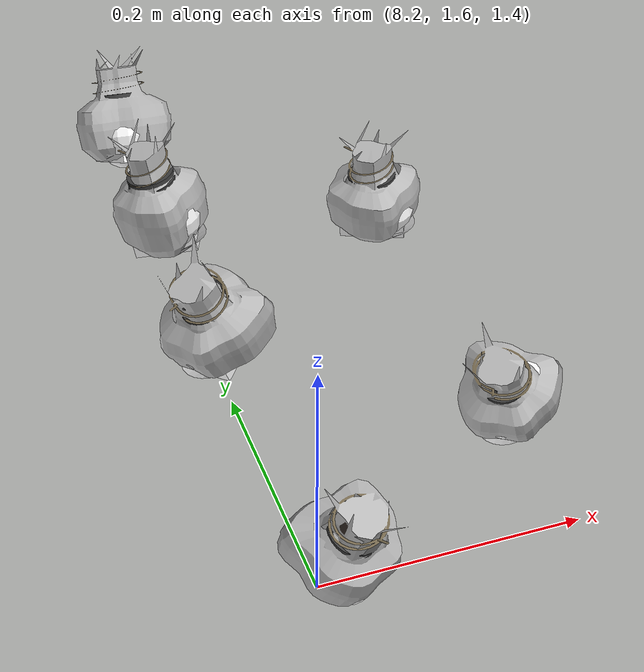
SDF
<sdf version="1.11">
 <world name="peach_orchard">
  <model name="ground">
   <static>true</static>
   <link name="link">
    <visual name="soil">
     <geometry><plane><normal>0 0 1</normal><size>32 22</size></plane></geometry>
     <material>
      <ambient>1 1 1 1</ambient>
      <diffuse>1 1 1 1</diffuse>
      <specular>0.1 0.1 0.1 1</specular>
      <pbr>
       <metal>
        <albedo_map>textures/soil_albedo.png</albedo_map>
        <normal_map type="tangent">textures/soil_normal.png</normal_map>
        <roughness>0.95</roughness>
        <metalness>0</metalness>
       </metal>
      </pbr>
     </material>
    </visual>
    <collision name="c_soil">
     <geometry><plane><normal>0 0 1</normal><size>32 22</size></plane></geometry>
    </collision>
   </link>
  </model>
  <model name="peach_tree_r4_t4_00">
   <pose>8.22 2.05094 1.36118 0 0.211422 2.40096</pose>
   <static>true</static>
   <link name="bag">
    <visual name="bag_mesh">
     <pose>0 0 0.0486951 0 0 0</pose>
     <geometry>
      <mesh><uri>model://peach_sim/meshes/bagged_peach.glb</uri><scale>0.952342 1.12206 1.10671</scale></mesh>
     </geometry>
    </visual>
    <visual name="body">
     <pose>0 0 0.0306951 0 0 0</pose>
     <geometry><ellipsoid><radii>0.0357128 0.0291735 0.0331507</radii></ellipsoid></geometry>
     <material>
      <ambient>1 1 1 1</ambient>
      <diffuse>1 1 1 1</diffuse>
      <specular>0.1 0.1 0.1 1</specular>
      <pbr>
       <metal>
        <albedo_map>textures/paper_bag_albedo.png</albedo_map>
        <normal_map type="tangent">textures/paper_bag_normal.png</normal_map>
        <roughness>0.72</roughness>
        <metalness>0</metalness>
       </metal>
      </pbr>
     </material>
    </visual>
    <visual name="bottom_fold">
     <pose>0 0 0.012 0 0 0.35</pose>
     <geometry><box><size>0.0553549 0.0335495 0.022</size></box></geometry>
     <material>
      <ambient>1 1 1 1</ambient>
      <diffuse>1 1 1 1</diffuse>
      <specular>0.1 0.1 0.1 1</specular>
      <pbr>
       <metal>
        <albedo_map>textures/paper_bag_albedo.png</albedo_map>
        <normal_map type="tangent">textures/paper_bag_normal.png</normal_map>
        <roughness>0.8</roughness>
        <metalness>0</metalness>
       </metal>
      </pbr>
     </material>
    </visual>
    <visual name="fruit">
     <pose>0 0 0.0193569 0 0 0</pose>
     <geometry><sphere><radius>0.0263712</radius></sphere></geometry>
     <material>
      <ambient>1 1 1 1</ambient>
      <diffuse>1 1 1 1</diffuse>
      <specular>0.1 0.1 0.1 1</specular>
      <pbr>
       <metal>
        <albedo_map>textures/fruit_skin_albedo.png</albedo_map>
        <normal_map type="tangent">textures/fruit_skin_normal.png</normal_map>
        <roughness>0.55</roughness>
        <metalness>0</metalness>
       </metal>
      </pbr>
     </material>
    </visual>
    <visual name="neck">
     <pose>0 0 0.0703902 0 0 0</pose>
     <geometry><cylinder><radius>0.013</radius><length>0.018</length></cylinder></geometry>
     <material>
      <ambient>1 1 1 1</ambient>
      <diffuse>1 1 1 1</diffuse>
      <specular>0.1 0.1 0.1 1</specular>
      <pbr>
       <metal>
        <albedo_map>textures/paper_bag_albedo.png</albedo_map>
        <normal_map type="tangent">textures/paper_bag_normal.png</normal_map>
        <roughness>0.75</roughness>
        <metalness>0</metalness>
       </metal>
      </pbr>
     </material>
    </visual>
    <visual name="gather">
     <pose>0 0 0.0513902 0 0 0</pose>
     <geometry><cylinder><radius>0.019</radius><length>0.02</length></cylinder></geometry>
     <material>
      <ambient>1 1 1 1</ambient>
      <diffuse>1 1 1 1</diffuse>
      <specular>0.1 0.1 0.1 1</specular>
      <pbr>
       <metal>
        <albedo_map>textures/paper_bag_albedo.png</albedo_map>
        <normal_map type="tangent">textures/paper_bag_normal.png</normal_map>
        <roughness>0.8</roughness>
        <metalness>0</metalness>
       </metal>
      </pbr>
     </material>
    </visual>
    <visual name="inner_paper">
     <pose>0 0 0.0753902 0 0 0</pose>
     <geometry><cylinder><radius>0.01</radius><length>0.008</length></cylinder></geometry>
     <material>
      <ambient>0.180392 0.14902 0.133333 1</ambient>
      <diffuse>0.180392 0.14902 0.133333 1</diffuse>
      <specular>0.1 0.1 0.1 1</specular>
     </material>
    </visual>
    <visual name="wire_0">
     <pose>0 0 0.0653902 0 0 0</pose>
     <geometry><cylinder><radius>0.0205</radius><length>0.0035</length></cylinder></geometry>
     <material>
      <ambient>0.25 0.25 0.25 1</ambient>
      <diffuse>0.25 0.25 0.25 1</diffuse>
      <specular>0.1 0.1 0.1 1</specular>
     </material>
    </visual>
    <visual name="wire_1">
     <pose>0 0 0.0723902 0 0 0</pose>
     <geometry><cylinder><radius>0.0205</radius><length>0.0035</length></cylinder></geometry>
     <material>
      <ambient>0.25 0.25 0.25 1</ambient>
      <diffuse>0.25 0.25 0.25 1</diffuse>
      <specular>0.1 0.1 0.1 1</specular>
     </material>
    </visual>
    <visual name="wire_tail">
     <pose>0.01 0 0.0733902 0 0.521618 0</pose>
     <geometry><cylinder><radius>0.0012</radius><length>0.026</length></cylinder></geometry>
     <material>
      <ambient>0.25 0.25 0.25 1</ambient>
      <diffuse>0.25 0.25 0.25 1</diffuse>
      <specular>0.1 0.1 0.1 1</specular>
     </material>
    </visual>
    <collision name="c_body">
     <pose>0 0 0.0306951 0 0 0</pose>
     <geometry><cylinder><radius>0.0357128</radius><length>0.0613902</length></cylinder></geometry>
    </collision>
   </link>
  </model>
  <model name="peach_tree_r4_t4_01">
   <pose>8.22 1.87372 1.3921 0 0.388755 -2.74088</pose>
   <static>true</static>
   <link name="bag">
    <visual name="bag_mesh">
     <pose>0 0 0.0432155 0 0 -0</pose>
     <geometry>
      <mesh><uri>model://peach_sim/meshes/bagged_peach.glb</uri><scale>1.0823 1.18967 0.98217</scale></mesh>
     </geometry>
    </visual>
    <visual name="body">
     <pose>0 0 0.0252155 0 0 0</pose>
     <geometry><ellipsoid><radii>0.0405861 0.0309315 0.0272327</radii></ellipsoid></geometry>
     <material>
      <ambient>1 1 1 1</ambient>
      <diffuse>1 1 1 1</diffuse>
      <specular>0.1 0.1 0.1 1</specular>
      <pbr>
       <metal>
        <albedo_map>textures/paper_bag_albedo.png</albedo_map>
        <normal_map type="tangent">textures/paper_bag_normal.png</normal_map>
        <roughness>0.72</roughness>
        <metalness>0</metalness>
       </metal>
      </pbr>
     </material>
    </visual>
    <visual name="bottom_fold">
     <pose>0 0 0.012 0 0 0.35</pose>
     <geometry><box><size>0.0629085 0.0355712 0.022</size></box></geometry>
     <material>
      <ambient>1 1 1 1</ambient>
      <diffuse>1 1 1 1</diffuse>
      <specular>0.1 0.1 0.1 1</specular>
      <pbr>
       <metal>
        <albedo_map>textures/paper_bag_albedo.png</albedo_map>
        <normal_map type="tangent">textures/paper_bag_normal.png</normal_map>
        <roughness>0.8</roughness>
        <metalness>0</metalness>
       </metal>
      </pbr>
     </material>
    </visual>
    <visual name="fruit">
     <pose>0 0 0.0196808 0 0 0</pose>
     <geometry><sphere><radius>0.0267081</radius></sphere></geometry>
     <material>
      <ambient>1 1 1 1</ambient>
      <diffuse>1 1 1 1</diffuse>
      <specular>0.1 0.1 0.1 1</specular>
      <pbr>
       <metal>
        <albedo_map>textures/fruit_skin_albedo.png</albedo_map>
        <normal_map type="tangent">textures/fruit_skin_normal.png</normal_map>
        <roughness>0.55</roughness>
        <metalness>0</metalness>
       </metal>
      </pbr>
     </material>
    </visual>
    <visual name="neck">
     <pose>0 0 0.0594309 0 0 0</pose>
     <geometry><cylinder><radius>0.013</radius><length>0.018</length></cylinder></geometry>
     <material>
      <ambient>1 1 1 1</ambient>
      <diffuse>1 1 1 1</diffuse>
      <specular>0.1 0.1 0.1 1</specular>
      <pbr>
       <metal>
        <albedo_map>textures/paper_bag_albedo.png</albedo_map>
        <normal_map type="tangent">textures/paper_bag_normal.png</normal_map>
        <roughness>0.75</roughness>
        <metalness>0</metalness>
       </metal>
      </pbr>
     </material>
    </visual>
    <visual name="gather">
     <pose>0 0 0.0404309 0 0 0</pose>
     <geometry><cylinder><radius>0.019</radius><length>0.02</length></cylinder></geometry>
     <material>
      <ambient>1 1 1 1</ambient>
      <diffuse>1 1 1 1</diffuse>
      <specular>0.1 0.1 0.1 1</specular>
      <pbr>
       <metal>
        <albedo_map>textures/paper_bag_albedo.png</albedo_map>
        <normal_map type="tangent">textures/paper_bag_normal.png</normal_map>
        <roughness>0.8</roughness>
        <metalness>0</metalness>
       </metal>
      </pbr>
     </material>
    </visual>
    <visual name="inner_paper">
     <pose>0 0 0.0644309 0 0 0</pose>
     <geometry><cylinder><radius>0.01</radius><length>0.008</length></cylinder></geometry>
     <material>
      <ambient>0.180392 0.14902 0.133333 1</ambient>
      <diffuse>0.180392 0.14902 0.133333 1</diffuse>
      <specular>0.1 0.1 0.1 1</specular>
     </material>
    </visual>
    <visual name="wire_0">
     <pose>0 0 0.0544309 0 0 0</pose>
     <geometry><cylinder><radius>0.0205</radius><length>0.0035</length></cylinder></geometry>
     <material>
      <ambient>0.25 0.25 0.25 1</ambient>
      <diffuse>0.25 0.25 0.25 1</diffuse>
      <specular>0.1 0.1 0.1 1</specular>
     </material>
    </visual>
    <visual name="wire_1">
     <pose>0 0 0.0614309 0 0 0</pose>
     <geometry><cylinder><radius>0.0205</radius><length>0.0035</length></cylinder></geometry>
     <material>
      <ambient>0.25 0.25 0.25 1</ambient>
      <diffuse>0.25 0.25 0.25 1</diffuse>
      <specular>0.1 0.1 0.1 1</specular>
     </material>
    </visual>
    <visual name="wire_tail">
     <pose>0.01 0 0.0624309 0 0.521618 0</pose>
     <geometry><cylinder><radius>0.0012</radius><length>0.026</length></cylinder></geometry>
     <material>
      <ambient>0.25 0.25 0.25 1</ambient>
      <diffuse>0.25 0.25 0.25 1</diffuse>
      <specular>0.1 0.1 0.1 1</specular>
     </material>
    </visual>
    <collision name="c_body">
     <pose>0 0 0.0252155 0 0 0</pose>
     <geometry><cylinder><radius>0.0405861</radius><length>0.0504309</length></cylinder></geometry>
    </collision>
   </link>
  </model>
  <model name="peach_tree_r4_t4_02">
   <pose>8.22 1.62894 1.39004 0 0.455169 -1.26346</pose>
   <static>true</static>
   <link name="bag">
    <visual name="bag_mesh">
     <pose>0 0 0.0443576 0 0 -0</pose>
     <geometry>
      <mesh><uri>model://peach_sim/meshes/bagged_peach.glb</uri><scale>0.974383 1.15786 1.00813</scale></mesh>
     </geometry>
    </visual>
    <visual name="body">
     <pose>0 0 0.0263576 0 0 0</pose>
     <geometry><ellipsoid><radii>0.0365393 0.0301043 0.0284662</radii></ellipsoid></geometry>
     <material>
      <ambient>1 1 1 1</ambient>
      <diffuse>1 1 1 1</diffuse>
      <specular>0.1 0.1 0.1 1</specular>
      <pbr>
       <metal>
        <albedo_map>textures/paper_bag_albedo.png</albedo_map>
        <normal_map type="tangent">textures/paper_bag_normal.png</normal_map>
        <roughness>0.72</roughness>
        <metalness>0</metalness>
       </metal>
      </pbr>
     </material>
    </visual>
    <visual name="bottom_fold">
     <pose>0 0 0.012 0 0 0.35</pose>
     <geometry><box><size>0.056636 0.03462 0.022</size></box></geometry>
     <material>
      <ambient>1 1 1 1</ambient>
      <diffuse>1 1 1 1</diffuse>
      <specular>0.1 0.1 0.1 1</specular>
      <pbr>
       <metal>
        <albedo_map>textures/paper_bag_albedo.png</albedo_map>
        <normal_map type="tangent">textures/paper_bag_normal.png</normal_map>
        <roughness>0.8</roughness>
        <metalness>0</metalness>
       </metal>
      </pbr>
     </material>
    </visual>
    <visual name="fruit">
     <pose>0 0 0.0179867 0 0 0</pose>
     <geometry><sphere><radius>0.0249461</radius></sphere></geometry>
     <material>
      <ambient>1 1 1 1</ambient>
      <diffuse>1 1 1 1</diffuse>
      <specular>0.1 0.1 0.1 1</specular>
      <pbr>
       <metal>
        <albedo_map>textures/fruit_skin_albedo.png</albedo_map>
        <normal_map type="tangent">textures/fruit_skin_normal.png</normal_map>
        <roughness>0.55</roughness>
        <metalness>0</metalness>
       </metal>
      </pbr>
     </material>
    </visual>
    <visual name="neck">
     <pose>0 0 0.0617152 0 0 0</pose>
     <geometry><cylinder><radius>0.013</radius><length>0.018</length></cylinder></geometry>
     <material>
      <ambient>1 1 1 1</ambient>
      <diffuse>1 1 1 1</diffuse>
      <specular>0.1 0.1 0.1 1</specular>
      <pbr>
       <metal>
        <albedo_map>textures/paper_bag_albedo.png</albedo_map>
        <normal_map type="tangent">textures/paper_bag_normal.png</normal_map>
        <roughness>0.75</roughness>
        <metalness>0</metalness>
       </metal>
      </pbr>
     </material>
    </visual>
    <visual name="gather">
     <pose>0 0 0.0427152 0 0 0</pose>
     <geometry><cylinder><radius>0.019</radius><length>0.02</length></cylinder></geometry>
     <material>
      <ambient>1 1 1 1</ambient>
      <diffuse>1 1 1 1</diffuse>
      <specular>0.1 0.1 0.1 1</specular>
      <pbr>
       <metal>
        <albedo_map>textures/paper_bag_albedo.png</albedo_map>
        <normal_map type="tangent">textures/paper_bag_normal.png</normal_map>
        <roughness>0.8</roughness>
        <metalness>0</metalness>
       </metal>
      </pbr>
     </material>
    </visual>
    <visual name="inner_paper">
     <pose>0 0 0.0667152 0 0 0</pose>
     <geometry><cylinder><radius>0.01</radius><length>0.008</length></cylinder></geometry>
     <material>
      <ambient>0.180392 0.14902 0.133333 1</ambient>
      <diffuse>0.180392 0.14902 0.133333 1</diffuse>
      <specular>0.1 0.1 0.1 1</specular>
     </material>
    </visual>
    <visual name="wire_0">
     <pose>0 0 0.0567152 0 0 0</pose>
     <geometry><cylinder><radius>0.0205</radius><length>0.0035</length></cylinder></geometry>
     <material>
      <ambient>0.25 0.25 0.25 1</ambient>
      <diffuse>0.25 0.25 0.25 1</diffuse>
      <specular>0.1 0.1 0.1 1</specular>
     </material>
    </visual>
    <visual name="wire_1">
     <pose>0 0 0.0637152 0 0 0</pose>
     <geometry><cylinder><radius>0.0205</radius><length>0.0035</length></cylinder></geometry>
     <material>
      <ambient>0.25 0.25 0.25 1</ambient>
      <diffuse>0.25 0.25 0.25 1</diffuse>
      <specular>0.1 0.1 0.1 1</specular>
     </material>
    </visual>
    <visual name="wire_tail">
     <pose>0.01 0 0.0647152 0 0.521618 0</pose>
     <geometry><cylinder><radius>0.0012</radius><length>0.026</length></cylinder></geometry>
     <material>
      <ambient>0.25 0.25 0.25 1</ambient>
      <diffuse>0.25 0.25 0.25 1</diffuse>
      <specular>0.1 0.1 0.1 1</specular>
     </material>
    </visual>
    <collision name="c_body">
     <pose>0 0 0.0263576 0 0 0</pose>
     <geometry><cylinder><radius>0.0365393</radius><length>0.0527152</length></cylinder></geometry>
    </collision>
   </link>
  </model>
  <model name="peach_tree_r4_t4_03">
   <pose>8.39352 2.00454 1.37162 0 0.0652461 2.32643</pose>
   <static>true</static>
   <link name="bag">
    <visual name="bag_mesh">
     <pose>0 0 0.0395387 0 0 0</pose>
     <geometry>
      <mesh><uri>model://peach_sim/meshes/bagged_peach.glb</uri><scale>0.957902 1.14624 0.898607</scale></mesh>
     </geometry>
    </visual>
    <visual name="body">
     <pose>0 0 0.0215387 0 0 0</pose>
     <geometry><ellipsoid><radii>0.0359213 0.0298022 0.0232618</radii></ellipsoid></geometry>
     <material>
      <ambient>1 1 1 1</ambient>
      <diffuse>1 1 1 1</diffuse>
      <specular>0.1 0.1 0.1 1</specular>
      <pbr>
       <metal>
        <albedo_map>textures/paper_bag_albedo.png</albedo_map>
        <normal_map type="tangent">textures/paper_bag_normal.png</normal_map>
        <roughness>0.72</roughness>
        <metalness>0</metalness>
       </metal>
      </pbr>
     </material>
    </visual>
    <visual name="bottom_fold">
     <pose>0 0 0.012 0 0 0.35</pose>
     <geometry><box><size>0.0556781 0.0342725 0.022</size></box></geometry>
     <material>
      <ambient>1 1 1 1</ambient>
      <diffuse>1 1 1 1</diffuse>
      <specular>0.1 0.1 0.1 1</specular>
      <pbr>
       <metal>
        <albedo_map>textures/paper_bag_albedo.png</albedo_map>
        <normal_map type="tangent">textures/paper_bag_normal.png</normal_map>
        <roughness>0.8</roughness>
        <metalness>0</metalness>
       </metal>
      </pbr>
     </material>
    </visual>
    <visual name="fruit">
     <pose>0 0 0.0179169 0 0 0</pose>
     <geometry><sphere><radius>0.0248736</radius></sphere></geometry>
     <material>
      <ambient>1 1 1 1</ambient>
      <diffuse>1 1 1 1</diffuse>
      <specular>0.1 0.1 0.1 1</specular>
      <pbr>
       <metal>
        <albedo_map>textures/fruit_skin_albedo.png</albedo_map>
        <normal_map type="tangent">textures/fruit_skin_normal.png</normal_map>
        <roughness>0.55</roughness>
        <metalness>0</metalness>
       </metal>
      </pbr>
     </material>
    </visual>
    <visual name="neck">
     <pose>0 0 0.0520774 0 0 0</pose>
     <geometry><cylinder><radius>0.013</radius><length>0.018</length></cylinder></geometry>
     <material>
      <ambient>1 1 1 1</ambient>
      <diffuse>1 1 1 1</diffuse>
      <specular>0.1 0.1 0.1 1</specular>
      <pbr>
       <metal>
        <albedo_map>textures/paper_bag_albedo.png</albedo_map>
        <normal_map type="tangent">textures/paper_bag_normal.png</normal_map>
        <roughness>0.75</roughness>
        <metalness>0</metalness>
       </metal>
      </pbr>
     </material>
    </visual>
    <visual name="gather">
     <pose>0 0 0.0330774 0 0 0</pose>
     <geometry><cylinder><radius>0.019</radius><length>0.02</length></cylinder></geometry>
     <material>
      <ambient>1 1 1 1</ambient>
      <diffuse>1 1 1 1</diffuse>
      <specular>0.1 0.1 0.1 1</specular>
      <pbr>
       <metal>
        <albedo_map>textures/paper_bag_albedo.png</albedo_map>
        <normal_map type="tangent">textures/paper_bag_normal.png</normal_map>
        <roughness>0.8</roughness>
        <metalness>0</metalness>
       </metal>
      </pbr>
     </material>
    </visual>
    <visual name="inner_paper">
     <pose>0 0 0.0570774 0 0 0</pose>
     <geometry><cylinder><radius>0.01</radius><length>0.008</length></cylinder></geometry>
     <material>
      <ambient>0.180392 0.14902 0.133333 1</ambient>
      <diffuse>0.180392 0.14902 0.133333 1</diffuse>
      <specular>0.1 0.1 0.1 1</specular>
     </material>
    </visual>
    <visual name="wire_0">
     <pose>0 0 0.0470774 0 0 0</pose>
     <geometry><cylinder><radius>0.0205</radius><length>0.0035</length></cylinder></geometry>
     <material>
      <ambient>0.25 0.25 0.25 1</ambient>
      <diffuse>0.25 0.25 0.25 1</diffuse>
      <specular>0.1 0.1 0.1 1</specular>
     </material>
    </visual>
    <visual name="wire_1">
     <pose>0 0 0.0540774 0 0 0</pose>
     <geometry><cylinder><radius>0.0205</radius><length>0.0035</length></cylinder></geometry>
     <material>
      <ambient>0.25 0.25 0.25 1</ambient>
      <diffuse>0.25 0.25 0.25 1</diffuse>
      <specular>0.1 0.1 0.1 1</specular>
     </material>
    </visual>
    <visual name="wire_tail">
     <pose>0.01 0 0.0550774 0 0.521618 0</pose>
     <geometry><cylinder><radius>0.0012</radius><length>0.026</length></cylinder></geometry>
     <material>
      <ambient>0.25 0.25 0.25 1</ambient>
      <diffuse>0.25 0.25 0.25 1</diffuse>
      <specular>0.1 0.1 0.1 1</specular>
     </material>
    </visual>
    <collision name="c_body">
     <pose>0 0 0.0215387 0 0 0</pose>
     <geometry><cylinder><radius>0.0359213</radius><length>0.0430774</length></cylinder></geometry>
    </collision>
   </link>
  </model>
  <model name="peach_tree_r4_t4_04">
   <pose>8.42672 1.77528 1.34861 0 0.468115 -2.3373</pose>
   <static>true</static>
   <link name="bag">
    <visual name="bag_mesh">
     <pose>0 0 0.0404287 0 0 -0</pose>
     <geometry>
      <mesh><uri>model://peach_sim/meshes/bagged_peach.glb</uri><scale>0.979638 1.18502 0.918835</scale></mesh>
     </geometry>
    </visual>
    <visual name="body">
     <pose>0 0 0.0224287 0 0 0</pose>
     <geometry><ellipsoid><radii>0.0367364 0.0308104 0.024223</radii></ellipsoid></geometry>
     <material>
      <ambient>1 1 1 1</ambient>
      <diffuse>1 1 1 1</diffuse>
      <specular>0.1 0.1 0.1 1</specular>
      <pbr>
       <metal>
        <albedo_map>textures/paper_bag_albedo.png</albedo_map>
        <normal_map type="tangent">textures/paper_bag_normal.png</normal_map>
        <roughness>0.72</roughness>
        <metalness>0</metalness>
       </metal>
      </pbr>
     </material>
    </visual>
    <visual name="bottom_fold">
     <pose>0 0 0.012 0 0 0.35</pose>
     <geometry><box><size>0.0569415 0.035432 0.022</size></box></geometry>
     <material>
      <ambient>1 1 1 1</ambient>
      <diffuse>1 1 1 1</diffuse>
      <specular>0.1 0.1 0.1 1</specular>
      <pbr>
       <metal>
        <albedo_map>textures/paper_bag_albedo.png</albedo_map>
        <normal_map type="tangent">textures/paper_bag_normal.png</normal_map>
        <roughness>0.8</roughness>
        <metalness>0</metalness>
       </metal>
      </pbr>
     </material>
    </visual>
    <visual name="fruit">
     <pose>0 0 0.0185045 0 0 0</pose>
     <geometry><sphere><radius>0.0254846</radius></sphere></geometry>
     <material>
      <ambient>1 1 1 1</ambient>
      <diffuse>1 1 1 1</diffuse>
      <specular>0.1 0.1 0.1 1</specular>
      <pbr>
       <metal>
        <albedo_map>textures/fruit_skin_albedo.png</albedo_map>
        <normal_map type="tangent">textures/fruit_skin_normal.png</normal_map>
        <roughness>0.55</roughness>
        <metalness>0</metalness>
       </metal>
      </pbr>
     </material>
    </visual>
    <visual name="neck">
     <pose>0 0 0.0538575 0 0 0</pose>
     <geometry><cylinder><radius>0.013</radius><length>0.018</length></cylinder></geometry>
     <material>
      <ambient>1 1 1 1</ambient>
      <diffuse>1 1 1 1</diffuse>
      <specular>0.1 0.1 0.1 1</specular>
      <pbr>
       <metal>
        <albedo_map>textures/paper_bag_albedo.png</albedo_map>
        <normal_map type="tangent">textures/paper_bag_normal.png</normal_map>
        <roughness>0.75</roughness>
        <metalness>0</metalness>
       </metal>
      </pbr>
     </material>
    </visual>
    <visual name="gather">
     <pose>0 0 0.0348575 0 0 0</pose>
     <geometry><cylinder><radius>0.019</radius><length>0.02</length></cylinder></geometry>
     <material>
      <ambient>1 1 1 1</ambient>
      <diffuse>1 1 1 1</diffuse>
      <specular>0.1 0.1 0.1 1</specular>
      <pbr>
       <metal>
        <albedo_map>textures/paper_bag_albedo.png</albedo_map>
        <normal_map type="tangent">textures/paper_bag_normal.png</normal_map>
        <roughness>0.8</roughness>
        <metalness>0</metalness>
       </metal>
      </pbr>
     </material>
    </visual>
    <visual name="inner_paper">
     <pose>0 0 0.0588575 0 0 0</pose>
     <geometry><cylinder><radius>0.01</radius><length>0.008</length></cylinder></geometry>
     <material>
      <ambient>0.180392 0.14902 0.133333 1</ambient>
      <diffuse>0.180392 0.14902 0.133333 1</diffuse>
      <specular>0.1 0.1 0.1 1</specular>
     </material>
    </visual>
    <visual name="wire_0">
     <pose>0 0 0.0488575 0 0 0</pose>
     <geometry><cylinder><radius>0.0205</radius><length>0.0035</length></cylinder></geometry>
     <material>
      <ambient>0.25 0.25 0.25 1</ambient>
      <diffuse>0.25 0.25 0.25 1</diffuse>
      <specular>0.1 0.1 0.1 1</specular>
     </material>
    </visual>
    <visual name="wire_1">
     <pose>0 0 0.0558575 0 0 0</pose>
     <geometry><cylinder><radius>0.0205</radius><length>0.0035</length></cylinder></geometry>
     <material>
      <ambient>0.25 0.25 0.25 1</ambient>
      <diffuse>0.25 0.25 0.25 1</diffuse>
      <specular>0.1 0.1 0.1 1</specular>
     </material>
    </visual>
    <visual name="wire_tail">
     <pose>0.01 0 0.0568575 0 0.521618 0</pose>
     <geometry><cylinder><radius>0.0012</radius><length>0.026</length></cylinder></geometry>
     <material>
      <ambient>0.25 0.25 0.25 1</ambient>
      <diffuse>0.25 0.25 0.25 1</diffuse>
      <specular>0.1 0.1 0.1 1</specular>
     </material>
    </visual>
    <collision name="c_body">
     <pose>0 0 0.0224287 0 0 0</pose>
     <geometry><cylinder><radius>0.0367364</radius><length>0.0448575</length></cylinder></geometry>
    </collision>
   </link>
  </model>
  <model name="peach_tree_r4_t4_06">
   <pose>8.22 2.19382 1.35332 0 0.544929 1.46484</pose>
   <static>true</static>
   <link name="bag">
    <visual name="bag_mesh">
     <pose>0 0 0.0430998 0 0 0</pose>
     <geometry>
      <mesh><uri>model://peach_sim/meshes/bagged_peach.glb</uri><scale>1.03896 1.23952 0.97954</scale></mesh>
     </geometry>
    </visual>
    <visual name="body">
     <pose>0 0 0.0250998 0 0 0</pose>
     <geometry><ellipsoid><radii>0.0389612 0.0322274 0.0271078</radii></ellipsoid></geometry>
     <material>
      <ambient>1 1 1 1</ambient>
      <diffuse>1 1 1 1</diffuse>
      <specular>0.1 0.1 0.1 1</specular>
      <pbr>
       <metal>
        <albedo_map>textures/paper_bag_albedo.png</albedo_map>
        <normal_map type="tangent">textures/paper_bag_normal.png</normal_map>
        <roughness>0.72</roughness>
        <metalness>0</metalness>
       </metal>
      </pbr>
     </material>
    </visual>
    <visual name="bottom_fold">
     <pose>0 0 0.012 0 0 0.35</pose>
     <geometry><box><size>0.0603898 0.0370615 0.022</size></box></geometry>
     <material>
      <ambient>1 1 1 1</ambient>
      <diffuse>1 1 1 1</diffuse>
      <specular>0.1 0.1 0.1 1</specular>
      <pbr>
       <metal>
        <albedo_map>textures/paper_bag_albedo.png</albedo_map>
        <normal_map type="tangent">textures/paper_bag_normal.png</normal_map>
        <roughness>0.8</roughness>
        <metalness>0</metalness>
       </metal>
      </pbr>
     </material>
    </visual>
    <visual name="fruit">
     <pose>0 0 0.0186168 0 0 0</pose>
     <geometry><sphere><radius>0.0256014</radius></sphere></geometry>
     <material>
      <ambient>1 1 1 1</ambient>
      <diffuse>1 1 1 1</diffuse>
      <specular>0.1 0.1 0.1 1</specular>
      <pbr>
       <metal>
        <albedo_map>textures/fruit_skin_albedo.png</albedo_map>
        <normal_map type="tangent">textures/fruit_skin_normal.png</normal_map>
        <roughness>0.55</roughness>
        <metalness>0</metalness>
       </metal>
      </pbr>
     </material>
    </visual>
    <visual name="neck">
     <pose>0 0 0.0591995 0 0 0</pose>
     <geometry><cylinder><radius>0.013</radius><length>0.018</length></cylinder></geometry>
     <material>
      <ambient>1 1 1 1</ambient>
      <diffuse>1 1 1 1</diffuse>
      <specular>0.1 0.1 0.1 1</specular>
      <pbr>
       <metal>
        <albedo_map>textures/paper_bag_albedo.png</albedo_map>
        <normal_map type="tangent">textures/paper_bag_normal.png</normal_map>
        <roughness>0.75</roughness>
        <metalness>0</metalness>
       </metal>
      </pbr>
     </material>
    </visual>
    <visual name="gather">
     <pose>0 0 0.0401995 0 0 0</pose>
     <geometry><cylinder><radius>0.019</radius><length>0.02</length></cylinder></geometry>
     <material>
      <ambient>1 1 1 1</ambient>
      <diffuse>1 1 1 1</diffuse>
      <specular>0.1 0.1 0.1 1</specular>
      <pbr>
       <metal>
        <albedo_map>textures/paper_bag_albedo.png</albedo_map>
        <normal_map type="tangent">textures/paper_bag_normal.png</normal_map>
        <roughness>0.8</roughness>
        <metalness>0</metalness>
       </metal>
      </pbr>
     </material>
    </visual>
    <visual name="inner_paper">
     <pose>0 0 0.0641995 0 0 0</pose>
     <geometry><cylinder><radius>0.01</radius><length>0.008</length></cylinder></geometry>
     <material>
      <ambient>0.180392 0.14902 0.133333 1</ambient>
      <diffuse>0.180392 0.14902 0.133333 1</diffuse>
      <specular>0.1 0.1 0.1 1</specular>
     </material>
    </visual>
    <visual name="wire_0">
     <pose>0 0 0.0541995 0 0 0</pose>
     <geometry><cylinder><radius>0.0205</radius><length>0.0035</length></cylinder></geometry>
     <material>
      <ambient>0.25 0.25 0.25 1</ambient>
      <diffuse>0.25 0.25 0.25 1</diffuse>
      <specular>0.1 0.1 0.1 1</specular>
     </material>
    </visual>
    <visual name="wire_1">
     <pose>0 0 0.0611995 0 0 0</pose>
     <geometry><cylinder><radius>0.0205</radius><length>0.0035</length></cylinder></geometry>
     <material>
      <ambient>0.25 0.25 0.25 1</ambient>
      <diffuse>0.25 0.25 0.25 1</diffuse>
      <specular>0.1 0.1 0.1 1</specular>
     </material>
    </visual>
    <visual name="wire_tail">
     <pose>0.01 0 0.0621995 0 0.521618 0</pose>
     <geometry><cylinder><radius>0.0012</radius><length>0.026</length></cylinder></geometry>
     <material>
      <ambient>0.25 0.25 0.25 1</ambient>
      <diffuse>0.25 0.25 0.25 1</diffuse>
      <specular>0.1 0.1 0.1 1</specular>
     </material>
    </visual>
    <collision name="c_body">
     <pose>0 0 0.0250998 0 0 0</pose>
     <geometry><cylinder><radius>0.0389612</radius><length>0.0501995</length></cylinder></geometry>
    </collision>
   </link>
  </model>
 </world>
</sdf>
